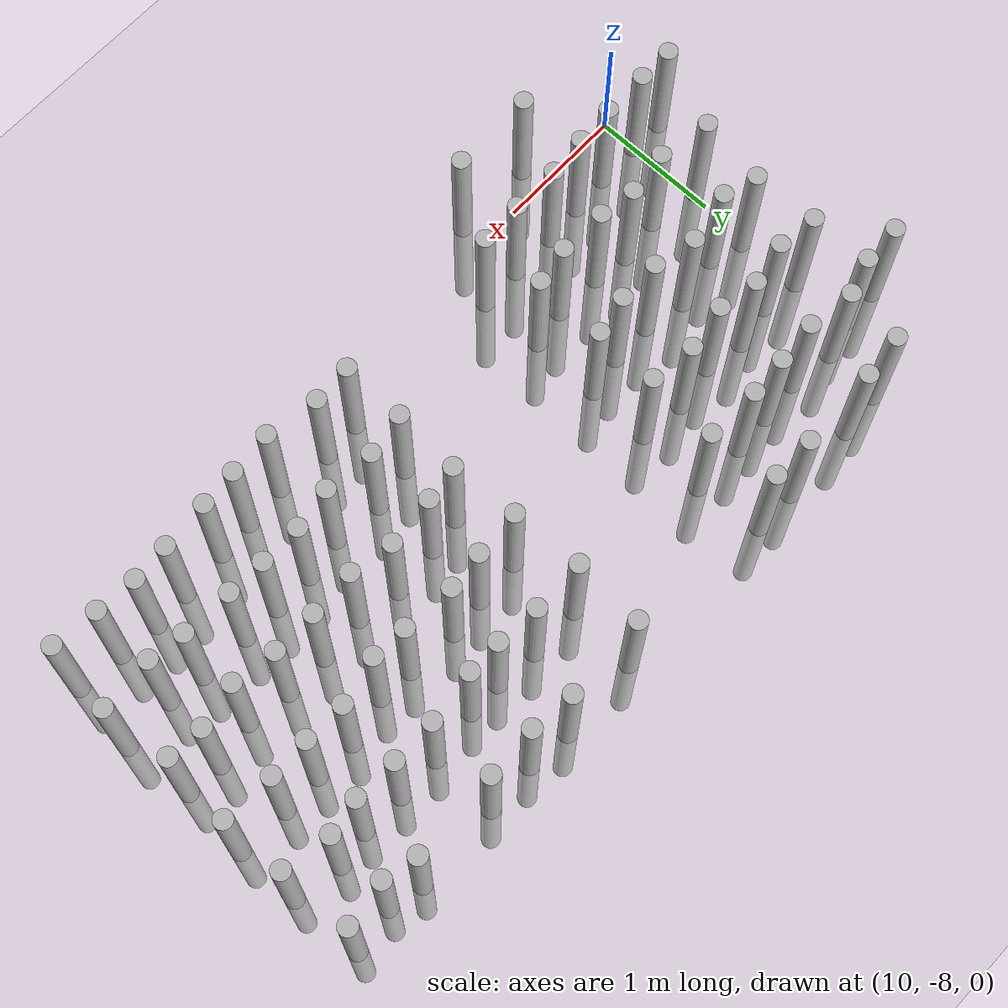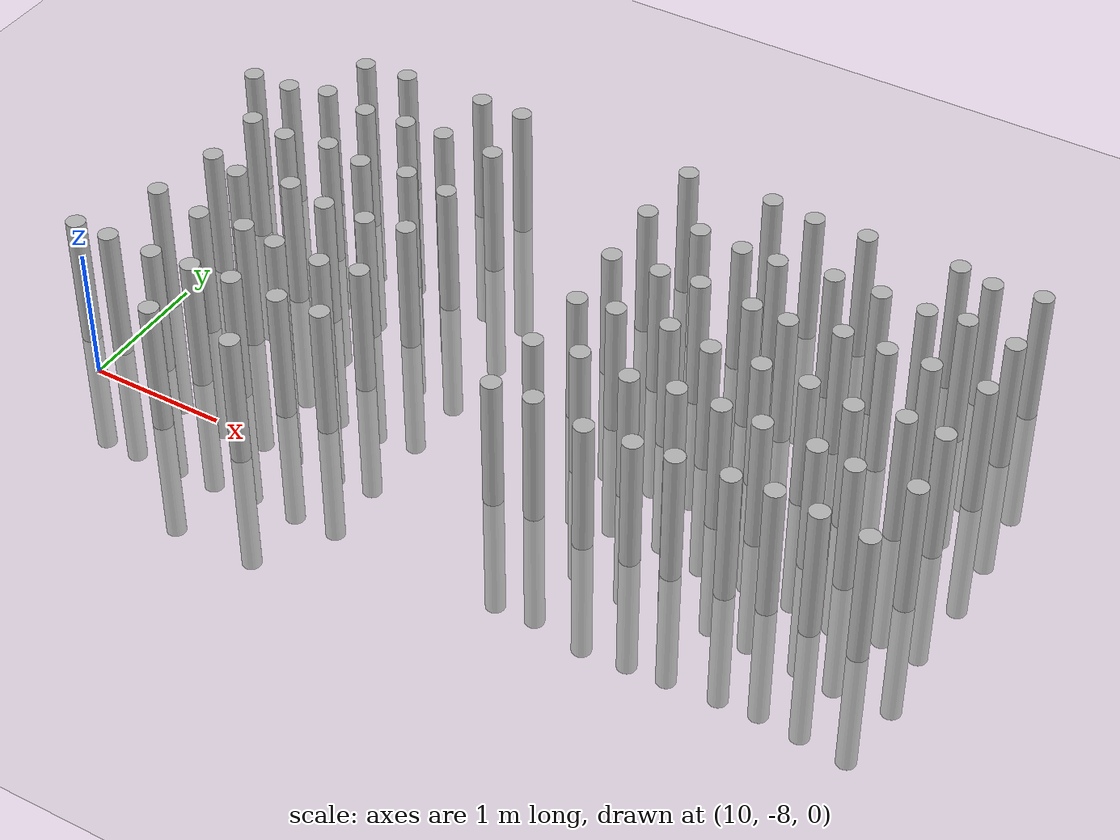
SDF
<sdf version="1.7">
 <world name="farmland_world">
  <model name="ground_plane">
   <static>1</static>
   <link name="link">
    <collision name="collision">
     <geometry><plane><normal>0 0 1</normal><size>40.0 40.0</size></plane></geometry>
     <surface><friction><ode><mu>100</mu><mu2>50</mu2></ode></friction></surface>
    </collision>
    <visual name="visual">
     <cast_shadows>0</cast_shadows>
     <geometry><plane><normal>0 0 1</normal><size>40.0 40.0</size></plane></geometry>
     <material>
      <script><uri>file://media/materials/scripts/gazebo.material</uri><name>Gazebo/Grey</name></script>
     </material>
    </visual>
   </link>
  </model>
  <model name="tree_3_427">
   <static>1</static>
   <link name="link">
    <collision name="collision">
     <geometry><cylinder><radius>0.07</radius><length>2.0</length></cylinder></geometry>
     <surface><friction><ode><mu>100</mu><mu2>50</mu2></ode></friction></surface>
    </collision>
    <visual name="visual">
     <geometry><cylinder><radius>0.07</radius><length>2.0</length></cylinder></geometry>
    </visual>
   </link>
   <pose>9.713406692769963 -5.666653309992588 0 0 0 0</pose>
  </model>
  <model name="tree_3_431">
   <static>1</static>
   <link name="link">
    <collision name="collision">
     <geometry><cylinder><radius>0.07</radius><length>2.0</length></cylinder></geometry>
     <surface><friction><ode><mu>100</mu><mu2>50</mu2></ode></friction></surface>
    </collision>
    <visual name="visual">
     <geometry><cylinder><radius>0.07</radius><length>2.0</length></cylinder></geometry>
    </visual>
   </link>
   <pose>9.716843916631666 -7.717643016789093 0 0 0 0</pose>
  </model>
  <model name="tree_3_457">
   <static>1</static>
   <link name="link">
    <collision name="collision">
     <geometry><cylinder><radius>0.07</radius><length>2.0</length></cylinder></geometry>
     <surface><friction><ode><mu>100</mu><mu2>50</mu2></ode></friction></surface>
    </collision>
    <visual name="visual">
     <geometry><cylinder><radius>0.07</radius><length>2.0</length></cylinder></geometry>
    </visual>
   </link>
   <pose>10.01668231866262 -5.656934089551336 0 0 0 0</pose>
  </model>
  <model name="tree_3_458">
   <static>1</static>
   <link name="link">
    <collision name="collision">
     <geometry><cylinder><radius>0.07</radius><length>2.0</length></cylinder></geometry>
     <surface><friction><ode><mu>100</mu><mu2>50</mu2></ode></friction></surface>
    </collision>
    <visual name="visual">
     <geometry><cylinder><radius>0.07</radius><length>2.0</length></cylinder></geometry>
    </visual>
   </link>
   <pose>10.029254145538667 -6.121470162606008 0 0 0 0</pose>
  </model>
  <model name="tree_3_459">
   <static>1</static>
   <link name="link">
    <collision name="collision">
     <geometry><cylinder><radius>0.07</radius><length>2.0</length></cylinder></geometry>
     <surface><friction><ode><mu>100</mu><mu2>50</mu2></ode></friction></surface>
    </collision>
    <visual name="visual">
     <geometry><cylinder><radius>0.07</radius><length>2.0</length></cylinder></geometry>
    </visual>
   </link>
   <pose>10.048028732741994 -6.616871509843174 0 0 0 0</pose>
  </model>
  <model name="tree_3_460">
   <static>1</static>
   <link name="link">
    <collision name="collision">
     <geometry><cylinder><radius>0.07</radius><length>2.0</length></cylinder></geometry>
     <surface><friction><ode><mu>100</mu><mu2>50</mu2></ode></friction></surface>
    </collision>
    <visual name="visual">
     <geometry><cylinder><radius>0.07</radius><length>2.0</length></cylinder></geometry>
    </visual>
   </link>
   <pose>9.965065156334074 -7.136988938684428 0 0 0 0</pose>
  </model>
  <model name="tree_3_461">
   <static>1</static>
   <link name="link">
    <collision name="collision">
     <geometry><cylinder><radius>0.07</radius><length>2.0</length></cylinder></geometry>
     <surface><friction><ode><mu>100</mu><mu2>50</mu2></ode></friction></surface>
    </collision>
    <visual name="visual">
     <geometry><cylinder><radius>0.07</radius><length>2.0</length></cylinder></geometry>
    </visual>
   </link>
   <pose>9.991712640409332 -7.717834701005956 0 0 0 0</pose>
  </model>
  <model name="tree_3_486">
   <static>1</static>
   <link name="link">
    <collision name="collision">
     <geometry><cylinder><radius>0.07</radius><length>2.0</length></cylinder></geometry>
     <surface><friction><ode><mu>100</mu><mu2>50</mu2></ode></friction></surface>
    </collision>
    <visual name="visual">
     <geometry><cylinder><radius>0.07</radius><length>2.0</length></cylinder></geometry>
    </visual>
   </link>
   <pose>10.335932059515129 -5.144592307224716 0 0 0 0</pose>
  </model>
  <model name="tree_3_487">
   <static>1</static>
   <link name="link">
    <collision name="collision">
     <geometry><cylinder><radius>0.07</radius><length>2.0</length></cylinder></geometry>
     <surface><friction><ode><mu>100</mu><mu2>50</mu2></ode></friction></surface>
    </collision>
    <visual name="visual">
     <geometry><cylinder><radius>0.07</radius><length>2.0</length></cylinder></geometry>
    </visual>
   </link>
   <pose>10.293655669295113 -5.573698642935129 0 0 0 0</pose>
  </model>
  <model name="tree_3_488">
   <static>1</static>
   <link name="link">
    <collision name="collision">
     <geometry><cylinder><radius>0.07</radius><length>2.0</length></cylinder></geometry>
     <surface><friction><ode><mu>100</mu><mu2>50</mu2></ode></friction></surface>
    </collision>
    <visual name="visual">
     <geometry><cylinder><radius>0.07</radius><length>2.0</length></cylinder></geometry>
    </visual>
   </link>
   <pose>10.334633531167645 -6.162046841101911 0 0 0 0</pose>
  </model>
  <model name="tree_3_489">
   <static>1</static>
   <link name="link">
    <collision name="collision">
     <geometry><cylinder><radius>0.07</radius><length>2.0</length></cylinder></geometry>
     <surface><friction><ode><mu>100</mu><mu2>50</mu2></ode></friction></surface>
    </collision>
    <visual name="visual">
     <geometry><cylinder><radius>0.07</radius><length>2.0</length></cylinder></geometry>
    </visual>
   </link>
   <pose>10.307576359743818 -6.694346745710686 0 0 0 0</pose>
  </model>
  <model name="tree_3_490">
   <static>1</static>
   <link name="link">
    <collision name="collision">
     <geometry><cylinder><radius>0.07</radius><length>2.0</length></cylinder></geometry>
     <surface><friction><ode><mu>100</mu><mu2>50</mu2></ode></friction></surface>
    </collision>
    <visual name="visual">
     <geometry><cylinder><radius>0.07</radius><length>2.0</length></cylinder></geometry>
    </visual>
   </link>
   <pose>10.367918556141891 -7.208340458158444 0 0 0 0</pose>
  </model>
  <model name="tree_3_491">
   <static>1</static>
   <link name="link">
    <collision name="collision">
     <geometry><cylinder><radius>0.07</radius><length>2.0</length></cylinder></geometry>
     <surface><friction><ode><mu>100</mu><mu2>50</mu2></ode></friction></surface>
    </collision>
    <visual name="visual">
     <geometry><cylinder><radius>0.07</radius><length>2.0</length></cylinder></geometry>
    </visual>
   </link>
   <pose>10.35096960344594 -7.715019568747527 0 0 0 0</pose>
  </model>
  <model name="tree_3_516">
   <static>1</static>
   <link name="link">
    <collision name="collision">
     <geometry><cylinder><radius>0.07</radius><length>2.0</length></cylinder></geometry>
     <surface><friction><ode><mu>100</mu><mu2>50</mu2></ode></friction></surface>
    </collision>
    <visual name="visual">
     <geometry><cylinder><radius>0.07</radius><length>2.0</length></cylinder></geometry>
    </visual>
   </link>
   <pose>10.674162654907622 -5.111748149724321 0 0 0 0</pose>
  </model>
  <model name="tree_3_517">
   <static>1</static>
   <link name="link">
    <collision name="collision">
     <geometry><cylinder><radius>0.07</radius><length>2.0</length></cylinder></geometry>
     <surface><friction><ode><mu>100</mu><mu2>50</mu2></ode></friction></surface>
    </collision>
    <visual name="visual">
     <geometry><cylinder><radius>0.07</radius><length>2.0</length></cylinder></geometry>
    </visual>
   </link>
   <pose>10.656520390696338 -5.6256777892102106 0 0 0 0</pose>
  </model>
  <model name="tree_3_518">
   <static>1</static>
   <link name="link">
    <collision name="collision">
     <geometry><cylinder><radius>0.07</radius><length>2.0</length></cylinder></geometry>
     <surface><friction><ode><mu>100</mu><mu2>50</mu2></ode></friction></surface>
    </collision>
    <visual name="visual">
     <geometry><cylinder><radius>0.07</radius><length>2.0</length></cylinder></geometry>
    </visual>
   </link>
   <pose>10.662288547476894 -6.098278690581856 0 0 0 0</pose>
  </model>
  <model name="tree_3_519">
   <static>1</static>
   <link name="link">
    <collision name="collision">
     <geometry><cylinder><radius>0.07</radius><length>2.0</length></cylinder></geometry>
     <surface><friction><ode><mu>100</mu><mu2>50</mu2></ode></friction></surface>
    </collision>
    <visual name="visual">
     <geometry><cylinder><radius>0.07</radius><length>2.0</length></cylinder></geometry>
    </visual>
   </link>
   <pose>10.704462662926723 -6.613960368620894 0 0 0 0</pose>
  </model>
  <model name="tree_3_520">
   <static>1</static>
   <link name="link">
    <collision name="collision">
     <geometry><cylinder><radius>0.07</radius><length>2.0</length></cylinder></geometry>
     <surface><friction><ode><mu>100</mu><mu2>50</mu2></ode></friction></surface>
    </collision>
    <visual name="visual">
     <geometry><cylinder><radius>0.07</radius><length>2.0</length></cylinder></geometry>
    </visual>
   </link>
   <pose>10.708890922704038 -7.163905936424645 0 0 0 0</pose>
  </model>
  <model name="tree_3_521">
   <static>1</static>
   <link name="link">
    <collision name="collision">
     <geometry><cylinder><radius>0.07</radius><length>2.0</length></cylinder></geometry>
     <surface><friction><ode><mu>100</mu><mu2>50</mu2></ode></friction></surface>
    </collision>
    <visual name="visual">
     <geometry><cylinder><radius>0.07</radius><length>2.0</length></cylinder></geometry>
    </visual>
   </link>
   <pose>10.65791413134621 -7.695061387303098 0 0 0 0</pose>
  </model>
  <model name="tree_3_522">
   <static>1</static>
   <link name="link">
    <collision name="collision">
     <geometry><cylinder><radius>0.07</radius><length>2.0</length></cylinder></geometry>
     <surface><friction><ode><mu>100</mu><mu2>50</mu2></ode></friction></surface>
    </collision>
    <visual name="visual">
     <geometry><cylinder><radius>0.07</radius><length>2.0</length></cylinder></geometry>
    </visual>
   </link>
   <pose>10.701112157277533 -8.195528239117111 0 0 0 0</pose>
  </model>
  <model name="tree_3_547">
   <static>1</static>
   <link name="link">
    <collision name="collision">
     <geometry><cylinder><radius>0.07</radius><length>2.0</length></cylinder></geometry>
     <surface><friction><ode><mu>100</mu><mu2>50</mu2></ode></friction></surface>
    </collision>
    <visual name="visual">
     <geometry><cylinder><radius>0.07</radius><length>2.0</length></cylinder></geometry>
    </visual>
   </link>
   <pose>10.983397613221843 -5.600413363174625 0 0 0 0</pose>
  </model>
  <model name="tree_3_548">
   <static>1</static>
   <link name="link">
    <collision name="collision">
     <geometry><cylinder><radius>0.07</radius><length>2.0</length></cylinder></geometry>
     <surface><friction><ode><mu>100</mu><mu2>50</mu2></ode></friction></surface>
    </collision>
    <visual name="visual">
     <geometry><cylinder><radius>0.07</radius><length>2.0</length></cylinder></geometry>
    </visual>
   </link>
   <pose>10.971950436478286 -6.15305015899827 0 0 0 0</pose>
  </model>
  <model name="tree_3_549">
   <static>1</static>
   <link name="link">
    <collision name="collision">
     <geometry><cylinder><radius>0.07</radius><length>2.0</length></cylinder></geometry>
     <surface><friction><ode><mu>100</mu><mu2>50</mu2></ode></friction></surface>
    </collision>
    <visual name="visual">
     <geometry><cylinder><radius>0.07</radius><length>2.0</length></cylinder></geometry>
    </visual>
   </link>
   <pose>11.032150650976437 -6.6826000480217695 0 0 0 0</pose>
  </model>
  <model name="tree_3_550">
   <static>1</static>
   <link name="link">
    <collision name="collision">
     <geometry><cylinder><radius>0.07</radius><length>2.0</length></cylinder></geometry>
     <surface><friction><ode><mu>100</mu><mu2>50</mu2></ode></friction></surface>
    </collision>
    <visual name="visual">
     <geometry><cylinder><radius>0.07</radius><length>2.0</length></cylinder></geometry>
    </visual>
   </link>
   <pose>10.992822056437044 -7.205745992389437 0 0 0 0</pose>
  </model>
  <model name="tree_3_551">
   <static>1</static>
   <link name="link">
    <collision name="collision">
     <geometry><cylinder><radius>0.07</radius><length>2.0</length></cylinder></geometry>
     <surface><friction><ode><mu>100</mu><mu2>50</mu2></ode></friction></surface>
    </collision>
    <visual name="visual">
     <geometry><cylinder><radius>0.07</radius><length>2.0</length></cylinder></geometry>
    </visual>
   </link>
   <pose>10.9700043031496 -7.665531923038895 0 0 0 0</pose>
  </model>
  <model name="tree_3_576">
   <static>1</static>
   <link name="link">
    <collision name="collision">
     <geometry><cylinder><radius>0.07</radius><length>2.0</length></cylinder></geometry>
     <surface><friction><ode><mu>100</mu><mu2>50</mu2></ode></friction></surface>
    </collision>
    <visual name="visual">
     <geometry><cylinder><radius>0.07</radius><length>2.0</length></cylinder></geometry>
    </visual>
   </link>
   <pose>11.30211409659547 -5.093164291907491 0 0 0 0</pose>
  </model>
  <model name="tree_3_577">
   <static>1</static>
   <link name="link">
    <collision name="collision">
     <geometry><cylinder><radius>0.07</radius><length>2.0</length></cylinder></geometry>
     <surface><friction><ode><mu>100</mu><mu2>50</mu2></ode></friction></surface>
    </collision>
    <visual name="visual">
     <geometry><cylinder><radius>0.07</radius><length>2.0</length></cylinder></geometry>
    </visual>
   </link>
   <pose>11.287404801943751 -5.581334007682346 0 0 0 0</pose>
  </model>
  <model name="tree_3_578">
   <static>1</static>
   <link name="link">
    <collision name="collision">
     <geometry><cylinder><radius>0.07</radius><length>2.0</length></cylinder></geometry>
     <surface><friction><ode><mu>100</mu><mu2>50</mu2></ode></friction></surface>
    </collision>
    <visual name="visual">
     <geometry><cylinder><radius>0.07</radius><length>2.0</length></cylinder></geometry>
    </visual>
   </link>
   <pose>11.319817154785081 -6.097589460309639 0 0 0 0</pose>
  </model>
  <model name="tree_3_579">
   <static>1</static>
   <link name="link">
    <collision name="collision">
     <geometry><cylinder><radius>0.07</radius><length>2.0</length></cylinder></geometry>
     <surface><friction><ode><mu>100</mu><mu2>50</mu2></ode></friction></surface>
    </collision>
    <visual name="visual">
     <geometry><cylinder><radius>0.07</radius><length>2.0</length></cylinder></geometry>
    </visual>
   </link>
   <pose>11.362931942051565 -6.679826728997952 0 0 0 0</pose>
  </model>
  <model name="tree_3_580">
   <static>1</static>
   <link name="link">
    <collision name="collision">
     <geometry><cylinder><radius>0.07</radius><length>2.0</length></cylinder></geometry>
     <surface><friction><ode><mu>100</mu><mu2>50</mu2></ode></friction></surface>
    </collision>
    <visual name="visual">
     <geometry><cylinder><radius>0.07</radius><length>2.0</length></cylinder></geometry>
    </visual>
   </link>
   <pose>11.362183174635634 -7.217050098196327 0 0 0 0</pose>
  </model>
  <model name="tree_3_581">
   <static>1</static>
   <link name="link">
    <collision name="collision">
     <geometry><cylinder><radius>0.07</radius><length>2.0</length></cylinder></geometry>
     <surface><friction><ode><mu>100</mu><mu2>50</mu2></ode></friction></surface>
    </collision>
    <visual name="visual">
     <geometry><cylinder><radius>0.07</radius><length>2.0</length></cylinder></geometry>
    </visual>
   </link>
   <pose>11.339718076759567 -7.667970033735194 0 0 0 0</pose>
  </model>
  <model name="tree_3_582">
   <static>1</static>
   <link name="link">
    <collision name="collision">
     <geometry><cylinder><radius>0.07</radius><length>2.0</length></cylinder></geometry>
     <surface><friction><ode><mu>100</mu><mu2>50</mu2></ode></friction></surface>
    </collision>
    <visual name="visual">
     <geometry><cylinder><radius>0.07</radius><length>2.0</length></cylinder></geometry>
    </visual>
   </link>
   <pose>11.342922391286878 -8.190473329806712 0 0 0 0</pose>
  </model>
  <model name="tree_3_606">
   <static>1</static>
   <link name="link">
    <collision name="collision">
     <geometry><cylinder><radius>0.07</radius><length>2.0</length></cylinder></geometry>
     <surface><friction><ode><mu>100</mu><mu2>50</mu2></ode></friction></surface>
    </collision>
    <visual name="visual">
     <geometry><cylinder><radius>0.07</radius><length>2.0</length></cylinder></geometry>
    </visual>
   </link>
   <pose>11.637760051900168 -5.095549033213696 0 0 0 0</pose>
  </model>
  <model name="tree_3_607">
   <static>1</static>
   <link name="link">
    <collision name="collision">
     <geometry><cylinder><radius>0.07</radius><length>2.0</length></cylinder></geometry>
     <surface><friction><ode><mu>100</mu><mu2>50</mu2></ode></friction></surface>
    </collision>
    <visual name="visual">
     <geometry><cylinder><radius>0.07</radius><length>2.0</length></cylinder></geometry>
    </visual>
   </link>
   <pose>11.703340662723283 -5.596714125091613 0 0 0 0</pose>
  </model>
  <model name="tree_3_608">
   <static>1</static>
   <link name="link">
    <collision name="collision">
     <geometry><cylinder><radius>0.07</radius><length>2.0</length></cylinder></geometry>
     <surface><friction><ode><mu>100</mu><mu2>50</mu2></ode></friction></surface>
    </collision>
    <visual name="visual">
     <geometry><cylinder><radius>0.07</radius><length>2.0</length></cylinder></geometry>
    </visual>
   </link>
   <pose>11.66982458844679 -6.137044784647011 0 0 0 0</pose>
  </model>
  <model name="tree_3_609">
   <static>1</static>
   <link name="link">
    <collision name="collision">
     <geometry><cylinder><radius>0.07</radius><length>2.0</length></cylinder></geometry>
     <surface><friction><ode><mu>100</mu><mu2>50</mu2></ode></friction></surface>
    </collision>
    <visual name="visual">
     <geometry><cylinder><radius>0.07</radius><length>2.0</length></cylinder></geometry>
    </visual>
   </link>
   <pose>11.658711853812125 -6.621665132302891 0 0 0 0</pose>
  </model>
  <model name="tree_3_610">
   <static>1</static>
   <link name="link">
    <collision name="collision">
     <geometry><cylinder><radius>0.07</radius><length>2.0</length></cylinder></geometry>
     <surface><friction><ode><mu>100</mu><mu2>50</mu2></ode></friction></surface>
    </collision>
    <visual name="visual">
     <geometry><cylinder><radius>0.07</radius><length>2.0</length></cylinder></geometry>
    </visual>
   </link>
   <pose>11.649891881080375 -7.166921995375304 0 0 0 0</pose>
  </model>
  <model name="tree_3_611">
   <static>1</static>
   <link name="link">
    <collision name="collision">
     <geometry><cylinder><radius>0.07</radius><length>2.0</length></cylinder></geometry>
     <surface><friction><ode><mu>100</mu><mu2>50</mu2></ode></friction></surface>
    </collision>
    <visual name="visual">
     <geometry><cylinder><radius>0.07</radius><length>2.0</length></cylinder></geometry>
    </visual>
   </link>
   <pose>11.672209754871155 -7.657687007643355 0 0 0 0</pose>
  </model>
  <model name="tree_3_636">
   <static>1</static>
   <link name="link">
    <collision name="collision">
     <geometry><cylinder><radius>0.07</radius><length>2.0</length></cylinder></geometry>
     <surface><friction><ode><mu>100</mu><mu2>50</mu2></ode></friction></surface>
    </collision>
    <visual name="visual">
     <geometry><cylinder><radius>0.07</radius><length>2.0</length></cylinder></geometry>
    </visual>
   </link>
   <pose>12.992235840497022 -5.101414236465901 0 0 0 0</pose>
  </model>
  <model name="tree_3_637">
   <static>1</static>
   <link name="link">
    <collision name="collision">
     <geometry><cylinder><radius>0.07</radius><length>2.0</length></cylinder></geometry>
     <surface><friction><ode><mu>100</mu><mu2>50</mu2></ode></friction></surface>
    </collision>
    <visual name="visual">
     <geometry><cylinder><radius>0.07</radius><length>2.0</length></cylinder></geometry>
    </visual>
   </link>
   <pose>12.966153278269616 -5.629983840357961 0 0 0 0</pose>
  </model>
  <model name="tree_3_638">
   <static>1</static>
   <link name="link">
    <collision name="collision">
     <geometry><cylinder><radius>0.07</radius><length>2.0</length></cylinder></geometry>
     <surface><friction><ode><mu>100</mu><mu2>50</mu2></ode></friction></surface>
    </collision>
    <visual name="visual">
     <geometry><cylinder><radius>0.07</radius><length>2.0</length></cylinder></geometry>
    </visual>
   </link>
   <pose>12.994660420717654 -6.165581245478504 0 0 0 0</pose>
  </model>
  <model name="tree_3_639">
   <static>1</static>
   <link name="link">
    <collision name="collision">
     <geometry><cylinder><radius>0.07</radius><length>2.0</length></cylinder></geometry>
     <surface><friction><ode><mu>100</mu><mu2>50</mu2></ode></friction></surface>
    </collision>
    <visual name="visual">
     <geometry><cylinder><radius>0.07</radius><length>2.0</length></cylinder></geometry>
    </visual>
   </link>
   <pose>13.031024071803788 -6.680024908556444 0 0 0 0</pose>
  </model>
  <model name="tree_3_640">
   <static>1</static>
   <link name="link">
    <collision name="collision">
     <geometry><cylinder><radius>0.07</radius><length>2.0</length></cylinder></geometry>
     <surface><friction><ode><mu>100</mu><mu2>50</mu2></ode></friction></surface>
    </collision>
    <visual name="visual">
     <geometry><cylinder><radius>0.07</radius><length>2.0</length></cylinder></geometry>
    </visual>
   </link>
   <pose>13.004283655868695 -7.19036813123364 0 0 0 0</pose>
  </model>
  <model name="tree_3_641">
   <static>1</static>
   <link name="link">
    <collision name="collision">
     <geometry><cylinder><radius>0.07</radius><length>2.0</length></cylinder></geometry>
     <surface><friction><ode><mu>100</mu><mu2>50</mu2></ode></friction></surface>
    </collision>
    <visual name="visual">
     <geometry><cylinder><radius>0.07</radius><length>2.0</length></cylinder></geometry>
    </visual>
   </link>
   <pose>12.996629909777667 -7.680660864663986 0 0 0 0</pose>
  </model>
  <model name="tree_3_667">
   <static>1</static>
   <link name="link">
    <collision name="collision">
     <geometry><cylinder><radius>0.07</radius><length>2.0</length></cylinder></geometry>
     <surface><friction><ode><mu>100</mu><mu2>50</mu2></ode></friction></surface>
    </collision>
    <visual name="visual">
     <geometry><cylinder><radius>0.07</radius><length>2.0</length></cylinder></geometry>
    </visual>
   </link>
   <pose>13.369863499804742 -5.627437023334421 0 0 0 0</pose>
  </model>
  <model name="tree_3_668">
   <static>1</static>
   <link name="link">
    <collision name="collision">
     <geometry><cylinder><radius>0.07</radius><length>2.0</length></cylinder></geometry>
     <surface><friction><ode><mu>100</mu><mu2>50</mu2></ode></friction></surface>
    </collision>
    <visual name="visual">
     <geometry><cylinder><radius>0.07</radius><length>2.0</length></cylinder></geometry>
    </visual>
   </link>
   <pose>13.351301785467792 -6.150276744628006 0 0 0 0</pose>
  </model>
  <model name="tree_3_669">
   <static>1</static>
   <link name="link">
    <collision name="collision">
     <geometry><cylinder><radius>0.07</radius><length>2.0</length></cylinder></geometry>
     <surface><friction><ode><mu>100</mu><mu2>50</mu2></ode></friction></surface>
    </collision>
    <visual name="visual">
     <geometry><cylinder><radius>0.07</radius><length>2.0</length></cylinder></geometry>
    </visual>
   </link>
   <pose>13.301218546588323 -6.639705327849242 0 0 0 0</pose>
  </model>
  <model name="tree_3_670">
   <static>1</static>
   <link name="link">
    <collision name="collision">
     <geometry><cylinder><radius>0.07</radius><length>2.0</length></cylinder></geometry>
     <surface><friction><ode><mu>100</mu><mu2>50</mu2></ode></friction></surface>
    </collision>
    <visual name="visual">
     <geometry><cylinder><radius>0.07</radius><length>2.0</length></cylinder></geometry>
    </visual>
   </link>
   <pose>13.324147225141035 -7.137557310481365 0 0 0 0</pose>
  </model>
  <model name="tree_3_671">
   <static>1</static>
   <link name="link">
    <collision name="collision">
     <geometry><cylinder><radius>0.07</radius><length>2.0</length></cylinder></geometry>
     <surface><friction><ode><mu>100</mu><mu2>50</mu2></ode></friction></surface>
    </collision>
    <visual name="visual">
     <geometry><cylinder><radius>0.07</radius><length>2.0</length></cylinder></geometry>
    </visual>
   </link>
   <pose>13.29660537084952 -7.665051986560636 0 0 0 0</pose>
  </model>
  <model name="tree_3_696">
   <static>1</static>
   <link name="link">
    <collision name="collision">
     <geometry><cylinder><radius>0.07</radius><length>2.0</length></cylinder></geometry>
     <surface><friction><ode><mu>100</mu><mu2>50</mu2></ode></friction></surface>
    </collision>
    <visual name="visual">
     <geometry><cylinder><radius>0.07</radius><length>2.0</length></cylinder></geometry>
    </visual>
   </link>
   <pose>13.634003245795856 -5.080483170362352 0 0 0 0</pose>
  </model>
  <model name="tree_3_697">
   <static>1</static>
   <link name="link">
    <collision name="collision">
     <geometry><cylinder><radius>0.07</radius><length>2.0</length></cylinder></geometry>
     <surface><friction><ode><mu>100</mu><mu2>50</mu2></ode></friction></surface>
    </collision>
    <visual name="visual">
     <geometry><cylinder><radius>0.07</radius><length>2.0</length></cylinder></geometry>
    </visual>
   </link>
   <pose>13.702428789179109 -5.656698181125145 0 0 0 0</pose>
  </model>
  <model name="tree_3_698">
   <static>1</static>
   <link name="link">
    <collision name="collision">
     <geometry><cylinder><radius>0.07</radius><length>2.0</length></cylinder></geometry>
     <surface><friction><ode><mu>100</mu><mu2>50</mu2></ode></friction></surface>
    </collision>
    <visual name="visual">
     <geometry><cylinder><radius>0.07</radius><length>2.0</length></cylinder></geometry>
    </visual>
   </link>
   <pose>13.64027250730973 -6.12017159449123 0 0 0 0</pose>
  </model>
  <model name="tree_3_699">
   <static>1</static>
   <link name="link">
    <collision name="collision">
     <geometry><cylinder><radius>0.07</radius><length>2.0</length></cylinder></geometry>
     <surface><friction><ode><mu>100</mu><mu2>50</mu2></ode></friction></surface>
    </collision>
    <visual name="visual">
     <geometry><cylinder><radius>0.07</radius><length>2.0</length></cylinder></geometry>
    </visual>
   </link>
   <pose>13.681771345855175 -6.606730865496751 0 0 0 0</pose>
  </model>
  <model name="tree_3_700">
   <static>1</static>
   <link name="link">
    <collision name="collision">
     <geometry><cylinder><radius>0.07</radius><length>2.0</length></cylinder></geometry>
     <surface><friction><ode><mu>100</mu><mu2>50</mu2></ode></friction></surface>
    </collision>
    <visual name="visual">
     <geometry><cylinder><radius>0.07</radius><length>2.0</length></cylinder></geometry>
    </visual>
   </link>
   <pose>13.70642319417416 -7.177540003371127 0 0 0 0</pose>
  </model>
  <model name="tree_3_701">
   <static>1</static>
   <link name="link">
    <collision name="collision">
     <geometry><cylinder><radius>0.07</radius><length>2.0</length></cylinder></geometry>
     <surface><friction><ode><mu>100</mu><mu2>50</mu2></ode></friction></surface>
    </collision>
    <visual name="visual">
     <geometry><cylinder><radius>0.07</radius><length>2.0</length></cylinder></geometry>
    </visual>
   </link>
   <pose>13.701204948998196 -7.7325159560788554 0 0 0 0</pose>
  </model>
  <model name="tree_3_726">
   <static>1</static>
   <link name="link">
    <collision name="collision">
     <geometry><cylinder><radius>0.07</radius><length>2.0</length></cylinder></geometry>
     <surface><friction><ode><mu>100</mu><mu2>50</mu2></ode></friction></surface>
    </collision>
    <visual name="visual">
     <geometry><cylinder><radius>0.07</radius><length>2.0</length></cylinder></geometry>
    </visual>
   </link>
   <pose>13.971874076522399 -5.117817302390869 0 0 0 0</pose>
  </model>
  <model name="tree_3_727">
   <static>1</static>
   <link name="link">
    <collision name="collision">
     <geometry><cylinder><radius>0.07</radius><length>2.0</length></cylinder></geometry>
     <surface><friction><ode><mu>100</mu><mu2>50</mu2></ode></friction></surface>
    </collision>
    <visual name="visual">
     <geometry><cylinder><radius>0.07</radius><length>2.0</length></cylinder></geometry>
    </visual>
   </link>
   <pose>13.967507120091524 -5.654947029560817 0 0 0 0</pose>
  </model>
  <model name="tree_3_728">
   <static>1</static>
   <link name="link">
    <collision name="collision">
     <geometry><cylinder><radius>0.07</radius><length>2.0</length></cylinder></geometry>
     <surface><friction><ode><mu>100</mu><mu2>50</mu2></ode></friction></surface>
    </collision>
    <visual name="visual">
     <geometry><cylinder><radius>0.07</radius><length>2.0</length></cylinder></geometry>
    </visual>
   </link>
   <pose>14.039359804253692 -6.152355632579782 0 0 0 0</pose>
  </model>
  <model name="tree_3_729">
   <static>1</static>
   <link name="link">
    <collision name="collision">
     <geometry><cylinder><radius>0.07</radius><length>2.0</length></cylinder></geometry>
     <surface><friction><ode><mu>100</mu><mu2>50</mu2></ode></friction></surface>
    </collision>
    <visual name="visual">
     <geometry><cylinder><radius>0.07</radius><length>2.0</length></cylinder></geometry>
    </visual>
   </link>
   <pose>14.010360725009749 -6.664888081245712 0 0 0 0</pose>
  </model>
  <model name="tree_3_730">
   <static>1</static>
   <link name="link">
    <collision name="collision">
     <geometry><cylinder><radius>0.07</radius><length>2.0</length></cylinder></geometry>
     <surface><friction><ode><mu>100</mu><mu2>50</mu2></ode></friction></surface>
    </collision>
    <visual name="visual">
     <geometry><cylinder><radius>0.07</radius><length>2.0</length></cylinder></geometry>
    </visual>
   </link>
   <pose>14.020930289025078 -7.12681871200041 0 0 0 0</pose>
  </model>
  <model name="tree_3_731">
   <static>1</static>
   <link name="link">
    <collision name="collision">
     <geometry><cylinder><radius>0.07</radius><length>2.0</length></cylinder></geometry>
     <surface><friction><ode><mu>100</mu><mu2>50</mu2></ode></friction></surface>
    </collision>
    <visual name="visual">
     <geometry><cylinder><radius>0.07</radius><length>2.0</length></cylinder></geometry>
    </visual>
   </link>
   <pose>14.033207360422097 -7.707424126658347 0 0 0 0</pose>
  </model>
  <model name="tree_3_756">
   <static>1</static>
   <link name="link">
    <collision name="collision">
     <geometry><cylinder><radius>0.07</radius><length>2.0</length></cylinder></geometry>
     <surface><friction><ode><mu>100</mu><mu2>50</mu2></ode></friction></surface>
    </collision>
    <visual name="visual">
     <geometry><cylinder><radius>0.07</radius><length>2.0</length></cylinder></geometry>
    </visual>
   </link>
   <pose>14.361395463655425 -5.106359745736322 0 0 0 0</pose>
  </model>
  <model name="tree_3_757">
   <static>1</static>
   <link name="link">
    <collision name="collision">
     <geometry><cylinder><radius>0.07</radius><length>2.0</length></cylinder></geometry>
     <surface><friction><ode><mu>100</mu><mu2>50</mu2></ode></friction></surface>
    </collision>
    <visual name="visual">
     <geometry><cylinder><radius>0.07</radius><length>2.0</length></cylinder></geometry>
    </visual>
   </link>
   <pose>14.363000974738911 -5.6067742954068205 0 0 0 0</pose>
  </model>
  <model name="tree_3_758">
   <static>1</static>
   <link name="link">
    <collision name="collision">
     <geometry><cylinder><radius>0.07</radius><length>2.0</length></cylinder></geometry>
     <surface><friction><ode><mu>100</mu><mu2>50</mu2></ode></friction></surface>
    </collision>
    <visual name="visual">
     <geometry><cylinder><radius>0.07</radius><length>2.0</length></cylinder></geometry>
    </visual>
   </link>
   <pose>14.310182301663994 -6.169785425514984 0 0 0 0</pose>
  </model>
  <model name="tree_3_759">
   <static>1</static>
   <link name="link">
    <collision name="collision">
     <geometry><cylinder><radius>0.07</radius><length>2.0</length></cylinder></geometry>
     <surface><friction><ode><mu>100</mu><mu2>50</mu2></ode></friction></surface>
    </collision>
    <visual name="visual">
     <geometry><cylinder><radius>0.07</radius><length>2.0</length></cylinder></geometry>
    </visual>
   </link>
   <pose>14.366672182034096 -6.646076438149257 0 0 0 0</pose>
  </model>
  <model name="tree_3_760">
   <static>1</static>
   <link name="link">
    <collision name="collision">
     <geometry><cylinder><radius>0.07</radius><length>2.0</length></cylinder></geometry>
     <surface><friction><ode><mu>100</mu><mu2>50</mu2></ode></friction></surface>
    </collision>
    <visual name="visual">
     <geometry><cylinder><radius>0.07</radius><length>2.0</length></cylinder></geometry>
    </visual>
   </link>
   <pose>14.33784028917368 -7.127292182433701 0 0 0 0</pose>
  </model>
  <model name="tree_3_761">
   <static>1</static>
   <link name="link">
    <collision name="collision">
     <geometry><cylinder><radius>0.07</radius><length>2.0</length></cylinder></geometry>
     <surface><friction><ode><mu>100</mu><mu2>50</mu2></ode></friction></surface>
    </collision>
    <visual name="visual">
     <geometry><cylinder><radius>0.07</radius><length>2.0</length></cylinder></geometry>
    </visual>
   </link>
   <pose>14.319318910642314 -7.687379152973794 0 0 0 0</pose>
  </model>
  <model name="tree_3_787">
   <static>1</static>
   <link name="link">
    <collision name="collision">
     <geometry><cylinder><radius>0.07</radius><length>2.0</length></cylinder></geometry>
     <surface><friction><ode><mu>100</mu><mu2>50</mu2></ode></friction></surface>
    </collision>
    <visual name="visual">
     <geometry><cylinder><radius>0.07</radius><length>2.0</length></cylinder></geometry>
    </visual>
   </link>
   <pose>14.70430416026039 -5.605954741428796 0 0 0 0</pose>
  </model>
  <model name="tree_3_788">
   <static>1</static>
   <link name="link">
    <collision name="collision">
     <geometry><cylinder><radius>0.07</radius><length>2.0</length></cylinder></geometry>
     <surface><friction><ode><mu>100</mu><mu2>50</mu2></ode></friction></surface>
    </collision>
    <visual name="visual">
     <geometry><cylinder><radius>0.07</radius><length>2.0</length></cylinder></geometry>
    </visual>
   </link>
   <pose>14.665891958687684 -6.091439488074493 0 0 0 0</pose>
  </model>
  <model name="tree_3_789">
   <static>1</static>
   <link name="link">
    <collision name="collision">
     <geometry><cylinder><radius>0.07</radius><length>2.0</length></cylinder></geometry>
     <surface><friction><ode><mu>100</mu><mu2>50</mu2></ode></friction></surface>
    </collision>
    <visual name="visual">
     <geometry><cylinder><radius>0.07</radius><length>2.0</length></cylinder></geometry>
    </visual>
   </link>
   <pose>14.706804219349578 -6.648561578931758 0 0 0 0</pose>
  </model>
  <model name="tree_3_790">
   <static>1</static>
   <link name="link">
    <collision name="collision">
     <geometry><cylinder><radius>0.07</radius><length>2.0</length></cylinder></geometry>
     <surface><friction><ode><mu>100</mu><mu2>50</mu2></ode></friction></surface>
    </collision>
    <visual name="visual">
     <geometry><cylinder><radius>0.07</radius><length>2.0</length></cylinder></geometry>
    </visual>
   </link>
   <pose>14.630993405768036 -7.137575952711547 0 0 0 0</pose>
  </model>
  <model name="tree_3_791">
   <static>1</static>
   <link name="link">
    <collision name="collision">
     <geometry><cylinder><radius>0.07</radius><length>2.0</length></cylinder></geometry>
     <surface><friction><ode><mu>100</mu><mu2>50</mu2></ode></friction></surface>
    </collision>
    <visual name="visual">
     <geometry><cylinder><radius>0.07</radius><length>2.0</length></cylinder></geometry>
    </visual>
   </link>
   <pose>14.691445696934402 -7.661631233220559 0 0 0 0</pose>
  </model>
  <model name="tree_3_816">
   <static>1</static>
   <link name="link">
    <collision name="collision">
     <geometry><cylinder><radius>0.07</radius><length>2.0</length></cylinder></geometry>
     <surface><friction><ode><mu>100</mu><mu2>50</mu2></ode></friction></surface>
    </collision>
    <visual name="visual">
     <geometry><cylinder><radius>0.07</radius><length>2.0</length></cylinder></geometry>
    </visual>
   </link>
   <pose>15.03357457574889 -5.092459453328419 0 0 0 0</pose>
  </model>
  <model name="tree_3_817">
   <static>1</static>
   <link name="link">
    <collision name="collision">
     <geometry><cylinder><radius>0.07</radius><length>2.0</length></cylinder></geometry>
     <surface><friction><ode><mu>100</mu><mu2>50</mu2></ode></friction></surface>
    </collision>
    <visual name="visual">
     <geometry><cylinder><radius>0.07</radius><length>2.0</length></cylinder></geometry>
    </visual>
   </link>
   <pose>15.036707309380889 -5.617992033380488 0 0 0 0</pose>
  </model>
  <model name="tree_3_818">
   <static>1</static>
   <link name="link">
    <collision name="collision">
     <geometry><cylinder><radius>0.07</radius><length>2.0</length></cylinder></geometry>
     <surface><friction><ode><mu>100</mu><mu2>50</mu2></ode></friction></surface>
    </collision>
    <visual name="visual">
     <geometry><cylinder><radius>0.07</radius><length>2.0</length></cylinder></geometry>
    </visual>
   </link>
   <pose>14.983030577120987 -6.1017916052987315 0 0 0 0</pose>
  </model>
  <model name="tree_3_819">
   <static>1</static>
   <link name="link">
    <collision name="collision">
     <geometry><cylinder><radius>0.07</radius><length>2.0</length></cylinder></geometry>
     <surface><friction><ode><mu>100</mu><mu2>50</mu2></ode></friction></surface>
    </collision>
    <visual name="visual">
     <geometry><cylinder><radius>0.07</radius><length>2.0</length></cylinder></geometry>
    </visual>
   </link>
   <pose>15.039528475813738 -6.700626644642166 0 0 0 0</pose>
  </model>
  <model name="tree_3_820">
   <static>1</static>
   <link name="link">
    <collision name="collision">
     <geometry><cylinder><radius>0.07</radius><length>2.0</length></cylinder></geometry>
     <surface><friction><ode><mu>100</mu><mu2>50</mu2></ode></friction></surface>
    </collision>
    <visual name="visual">
     <geometry><cylinder><radius>0.07</radius><length>2.0</length></cylinder></geometry>
    </visual>
   </link>
   <pose>15.016610792667892 -7.154972808778277 0 0 0 0</pose>
  </model>
  <model name="tree_3_821">
   <static>1</static>
   <link name="link">
    <collision name="collision">
     <geometry><cylinder><radius>0.07</radius><length>2.0</length></cylinder></geometry>
     <surface><friction><ode><mu>100</mu><mu2>50</mu2></ode></friction></surface>
    </collision>
    <visual name="visual">
     <geometry><cylinder><radius>0.07</radius><length>2.0</length></cylinder></geometry>
    </visual>
   </link>
   <pose>14.979562249567987 -7.644206432705858 0 0 0 0</pose>
  </model>
  <model name="tree_3_846">
   <static>1</static>
   <link name="link">
    <collision name="collision">
     <geometry><cylinder><radius>0.07</radius><length>2.0</length></cylinder></geometry>
     <surface><friction><ode><mu>100</mu><mu2>50</mu2></ode></friction></surface>
    </collision>
    <visual name="visual">
     <geometry><cylinder><radius>0.07</radius><length>2.0</length></cylinder></geometry>
    </visual>
   </link>
   <pose>15.292722279781959 -5.151298840730344 0 0 0 0</pose>
  </model>
  <model name="tree_3_847">
   <static>1</static>
   <link name="link">
    <collision name="collision">
     <geometry><cylinder><radius>0.07</radius><length>2.0</length></cylinder></geometry>
     <surface><friction><ode><mu>100</mu><mu2>50</mu2></ode></friction></surface>
    </collision>
    <visual name="visual">
     <geometry><cylinder><radius>0.07</radius><length>2.0</length></cylinder></geometry>
    </visual>
   </link>
   <pose>15.304659764047077 -5.573840582558269 0 0 0 0</pose>
  </model>
  <model name="tree_3_848">
   <static>1</static>
   <link name="link">
    <collision name="collision">
     <geometry><cylinder><radius>0.07</radius><length>2.0</length></cylinder></geometry>
     <surface><friction><ode><mu>100</mu><mu2>50</mu2></ode></friction></surface>
    </collision>
    <visual name="visual">
     <geometry><cylinder><radius>0.07</radius><length>2.0</length></cylinder></geometry>
    </visual>
   </link>
   <pose>15.291935691692595 -6.098215202724355 0 0 0 0</pose>
  </model>
  <model name="tree_3_849">
   <static>1</static>
   <link name="link">
    <collision name="collision">
     <geometry><cylinder><radius>0.07</radius><length>2.0</length></cylinder></geometry>
     <surface><friction><ode><mu>100</mu><mu2>50</mu2></ode></friction></surface>
    </collision>
    <visual name="visual">
     <geometry><cylinder><radius>0.07</radius><length>2.0</length></cylinder></geometry>
    </visual>
   </link>
   <pose>15.371224741179102 -6.631592490795274 0 0 0 0</pose>
  </model>
  <model name="tree_3_850">
   <static>1</static>
   <link name="link">
    <collision name="collision">
     <geometry><cylinder><radius>0.07</radius><length>2.0</length></cylinder></geometry>
     <surface><friction><ode><mu>100</mu><mu2>50</mu2></ode></friction></surface>
    </collision>
    <visual name="visual">
     <geometry><cylinder><radius>0.07</radius><length>2.0</length></cylinder></geometry>
    </visual>
   </link>
   <pose>15.29354286872719 -7.195738051593612 0 0 0 0</pose>
  </model>
  <model name="tree_3_851">
   <static>1</static>
   <link name="link">
    <collision name="collision">
     <geometry><cylinder><radius>0.07</radius><length>2.0</length></cylinder></geometry>
     <surface><friction><ode><mu>100</mu><mu2>50</mu2></ode></friction></surface>
    </collision>
    <visual name="visual">
     <geometry><cylinder><radius>0.07</radius><length>2.0</length></cylinder></geometry>
    </visual>
   </link>
   <pose>15.291641046902841 -7.670120523031187 0 0 0 0</pose>
  </model>
  <model name="tree_3_876">
   <static>1</static>
   <link name="link">
    <collision name="collision">
     <geometry><cylinder><radius>0.07</radius><length>2.0</length></cylinder></geometry>
     <surface><friction><ode><mu>100</mu><mu2>50</mu2></ode></friction></surface>
    </collision>
    <visual name="visual">
     <geometry><cylinder><radius>0.07</radius><length>2.0</length></cylinder></geometry>
    </visual>
   </link>
   <pose>15.633414037396067 -5.104637439882078 0 0 0 0</pose>
  </model>
  <model name="tree_3_877">
   <static>1</static>
   <link name="link">
    <collision name="collision">
     <geometry><cylinder><radius>0.07</radius><length>2.0</length></cylinder></geometry>
     <surface><friction><ode><mu>100</mu><mu2>50</mu2></ode></friction></surface>
    </collision>
    <visual name="visual">
     <geometry><cylinder><radius>0.07</radius><length>2.0</length></cylinder></geometry>
    </visual>
   </link>
   <pose>15.668778646685343 -5.640529148430829 0 0 0 0</pose>
  </model>
  <model name="tree_3_878">
   <static>1</static>
   <link name="link">
    <collision name="collision">
     <geometry><cylinder><radius>0.07</radius><length>2.0</length></cylinder></geometry>
     <surface><friction><ode><mu>100</mu><mu2>50</mu2></ode></friction></surface>
    </collision>
    <visual name="visual">
     <geometry><cylinder><radius>0.07</radius><length>2.0</length></cylinder></geometry>
    </visual>
   </link>
   <pose>15.687885563537957 -6.120839310006923 0 0 0 0</pose>
  </model>
  <model name="tree_3_879">
   <static>1</static>
   <link name="link">
    <collision name="collision">
     <geometry><cylinder><radius>0.07</radius><length>2.0</length></cylinder></geometry>
     <surface><friction><ode><mu>100</mu><mu2>50</mu2></ode></friction></surface>
    </collision>
    <visual name="visual">
     <geometry><cylinder><radius>0.07</radius><length>2.0</length></cylinder></geometry>
    </visual>
   </link>
   <pose>15.645071476721249 -6.652257834415022 0 0 0 0</pose>
  </model>
  <model name="tree_3_880">
   <static>1</static>
   <link name="link">
    <collision name="collision">
     <geometry><cylinder><radius>0.07</radius><length>2.0</length></cylinder></geometry>
     <surface><friction><ode><mu>100</mu><mu2>50</mu2></ode></friction></surface>
    </collision>
    <visual name="visual">
     <geometry><cylinder><radius>0.07</radius><length>2.0</length></cylinder></geometry>
    </visual>
   </link>
   <pose>15.703874442671685 -7.174469344544801 0 0 0 0</pose>
  </model>
  <model name="tree_3_881">
   <static>1</static>
   <link name="link">
    <collision name="collision">
     <geometry><cylinder><radius>0.07</radius><length>2.0</length></cylinder></geometry>
     <surface><friction><ode><mu>100</mu><mu2>50</mu2></ode></friction></surface>
    </collision>
    <visual name="visual">
     <geometry><cylinder><radius>0.07</radius><length>2.0</length></cylinder></geometry>
    </visual>
   </link>
   <pose>15.64272492117846 -7.707433211873125 0 0 0 0</pose>
  </model>
 </world>
</sdf>
